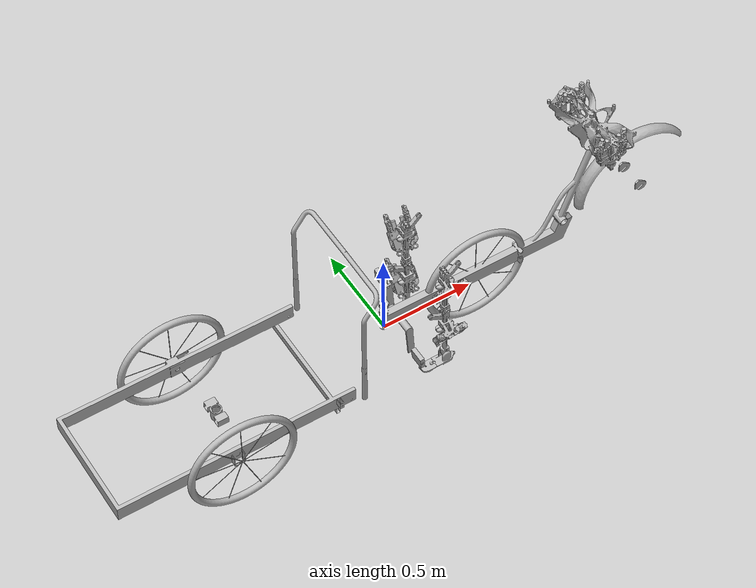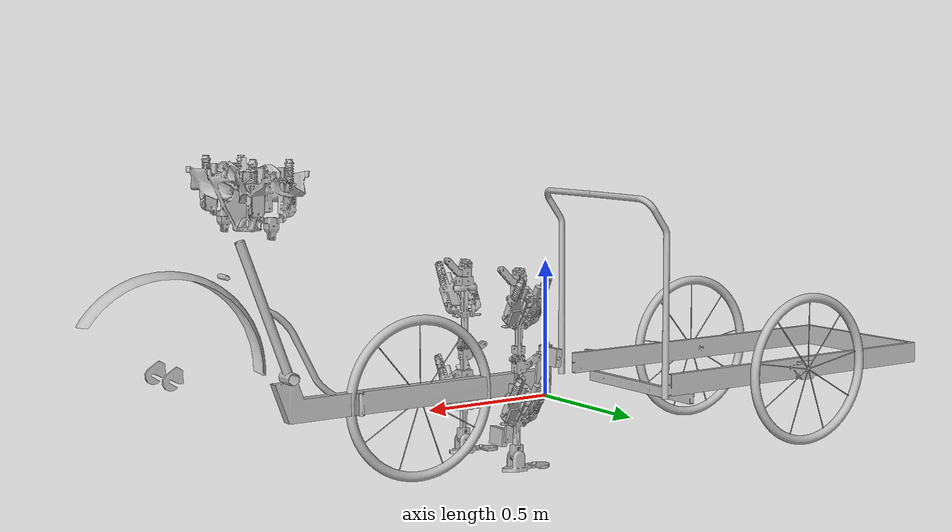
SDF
<sdf version="1.6">
	<model name="rikshaw">
		<link name="bike">
			<self_collide>false</self_collide>
			<pose frame="">-1.3108998963673458e-07 2.442664557200658e-07 1.774980865576481e-07 0.0 -0.0 0.0</pose>
			<inertial>
				<pose frame="">0.0 0.0 0.0 0 0 0</pose>
				<mass>21.819480362884757</mass>
				<inertia>
					<ixx>5.88647979750313</ixx>
					<ixy>0.052466044382052206</ixy>
					<ixz>0.14605356512826828</ixz>
					<iyy>9.145452768014158</iyy>
					<iyz>-2.309312656009525</iyz>
					<izz>3.8627003582898043</izz>
				</inertia>
			</inertial>
			<collision name="bike_collision">
				<geometry>
					<mesh>
						<uri>model://rikshaw/meshes/collisions/bike.stl</uri>
						<scale>0.001 0.001 0.001</scale>
					</mesh>
				</geometry>
			</collision>
			<visual name="bike_visual">
				<geometry>
					<mesh>
						<uri>model://rikshaw/meshes/visuals/bike.stl</uri>
						<scale>0.001 0.001 0.001</scale>
					</mesh>
				</geometry>
			</visual>
		</link>
		<link name="front_part">
			<self_collide>false</self_collide>
			<pose frame="">-0.716390260045379 0.010388552481776845 0.21643769422809594 0.0 -0.0 0.0</pose>
			<inertial>
				<pose frame="">0.0 0.0 0.0 0 0 0</pose>
				<mass>16.81067246564987</mass>
				<inertia>
					<ixx>3.20922967583295</ixx>
					<ixy>0.1811361599346656</ixy>
					<ixz>-0.006723082654580219</ixz>
					<iyy>14.662960288859963</iyy>
					<iyz>1.2419706811357931</iyz>
					<izz>13.912919701383359</izz>
				</inertia>
			</inertial>
			<collision name="front_part_collision">
				<geometry>
					<mesh>
						<uri>model://rikshaw/meshes/collisions/front_part.stl</uri>
						<scale>0.001 0.001 0.001</scale>
					</mesh>
				</geometry>
			</collision>
			<visual name="front_part_visual">
				<geometry>
					<mesh>
						<uri>model://rikshaw/meshes/visuals/front_part.stl</uri>
						<scale>0.001 0.001 0.001</scale>
					</mesh>
				</geometry>
			</visual>
		</link>
		<link name="left_wheel">
			<self_collide>false</self_collide>
			<pose frame="">-0.9984258521253281 -0.3500004088111488 0.04566700000000946 0.0 -0.0 0.0</pose>
			<inertial>
				<pose frame="">0.0 0.0 0.0 0 0 0</pose>
				<mass>13.340163929097853</mass>
				<inertia>
					<ixx>2.1711695314274517</ixx>
					<ixy>-4.661713033463329</ixy>
					<ixz>0.21322209220250807</ixz>
					<iyy>14.342326161889547</iyy>
					<iyz>0.608246286975286</iyz>
					<izz>15.441547158388715</izz>
				</inertia>
			</inertial>
			<collision name="left_wheel_collision">
				<geometry>
					<mesh>
						<uri>model://rikshaw/meshes/collisions/left_wheel.stl</uri>
						<scale>0.001 0.001 0.001</scale>
					</mesh>
				</geometry>
			</collision>
			<visual name="left_wheel_visual">
				<geometry>
					<mesh>
						<uri>model://rikshaw/meshes/visuals/left_wheel.stl</uri>
						<scale>0.001 0.001 0.001</scale>
					</mesh>
				</geometry>
			</visual>
		</link>
		<link name="right_wheel">
			<self_collide>false</self_collide>
			<pose frame="">-0.9984258521253281 0.34200026941711825 0.04566700000003973 0.0 -0.0 0.0</pose>
			<inertial>
				<pose frame="">0.0 0.0 0.0 0 0 0</pose>
				<mass>13.340163929097852</mass>
				<inertia>
					<ixx>2.0973170247321944</ixx>
					<ixy>4.555157860544093</ixy>
					<ixz>-0.20834836515382574</ixz>
					<iyy>14.34232616188958</iyy>
					<iyz>0.608246286975689</iyz>
					<izz>15.367694651693421</izz>
				</inertia>
			</inertial>
			<collision name="right_wheel_collision">
				<geometry>
					<mesh>
						<uri>model://rikshaw/meshes/collisions/right_wheel.stl</uri>
						<scale>0.001 0.001 0.001</scale>
					</mesh>
				</geometry>
			</collision>
			<visual name="right_wheel_visual">
				<geometry>
					<mesh>
						<uri>model://rikshaw/meshes/visuals/right_wheel.stl</uri>
						<scale>0.001 0.001 0.001</scale>
					</mesh>
				</geometry>
			</visual>
		</link>
		<link name="pedal_right">
			<self_collide>false</self_collide>
			<pose frame="">0.077866512064399 0.14798929042854536 0.17187503593715686 0.0 -0.0 0.0</pose>
			<inertial>
				<pose frame="">0.0 0.0 0.0 0 0 0</pose>
				<mass>0.946002588602011</mass>
				<inertia>
					<ixx>0.049584952858415854</ixx>
					<ixy>-0.010901175565176115</ixy>
					<ixz>-0.024062204564554247</ixz>
					<iyy>0.03409659621083961</iyy>
					<iyz>-0.012633073677194028</iyz>
					<izz>0.02706062629596726</izz>
				</inertia>
			</inertial>
			<collision name="pedal_right_collision">
				<geometry>
					<mesh>
						<uri>model://rikshaw/meshes/collisions/pedal_right.stl</uri>
						<scale>0.001 0.001 0.001</scale>
					</mesh>
				</geometry>
			</collision>
			<visual name="pedal_right_visual">
				<geometry>
					<mesh>
						<uri>model://rikshaw/meshes/visuals/pedal_right.stl</uri>
						<scale>0.001 0.001 0.001</scale>
					</mesh>
				</geometry>
			</visual>
		</link>
		<link name="kurbel">
			<self_collide>false</self_collide>
			<pose frame="">0.09222872619138603 0.00013171801209023543 0.0042772834965418725 0.0 -0.0 0.0</pose>
			<inertial>
				<pose frame="">0.0 0.0 0.0 0 0 0</pose>
				<mass>2.7832708381108002</mass>
				<inertia>
					<ixx>0.03321525556564324</ixx>
					<ixy>0.0010218101556732108</ixy>
					<ixz>-0.012937192477662387</ixz>
					<iyy>0.04158688185273832</iyy>
					<iyz>0.00030143634944108515</iyz>
					<izz>0.039731070916127355</izz>
				</inertia>
			</inertial>
			<collision name="kurbel_collision">
				<geometry>
					<mesh>
						<uri>model://rikshaw/meshes/collisions/kurbel.stl</uri>
						<scale>0.001 0.001 0.001</scale>
					</mesh>
				</geometry>
			</collision>
			<visual name="kurbel_visual">
				<geometry>
					<mesh>
						<uri>model://rikshaw/meshes/visuals/kurbel.stl</uri>
						<scale>0.001 0.001 0.001</scale>
					</mesh>
				</geometry>
			</visual>
		</link>
		<link name="pedal_left">
			<self_collide>false</self_collide>
			<pose frame="">0.10738103245690385 -0.14924470957145594 -0.16537796258198015 0.0 -0.0 0.0</pose>
			<inertial>
				<pose frame="">0.0 0.0 0.0 0 0 0</pose>
				<mass>0.9460025886020074</mass>
				<inertia>
					<ixx>0.0478650709459344</ixx>
					<ixy>0.015160685733445756</ixy>
					<ixz>-0.02334903344265402</ixz>
					<iyy>0.037196017563940593</iyy>
					<iyz>0.016827373941817436</iyz>
					<izz>0.032585937449107163</izz>
				</inertia>
			</inertial>
			<collision name="pedal_left_collision">
				<geometry>
					<mesh>
						<uri>model://rikshaw/meshes/collisions/pedal_left.stl</uri>
						<scale>0.001 0.001 0.001</scale>
					</mesh>
				</geometry>
			</collision>
			<visual name="pedal_left_visual">
				<geometry>
					<mesh>
						<uri>model://rikshaw/meshes/visuals/pedal_left.stl</uri>
						<scale>0.001 0.001 0.001</scale>
					</mesh>
				</geometry>
			</visual>
		</link>
		<link name="foot_left">
			<self_collide>false</self_collide>
			<pose frame="">0.1758335832021747 -0.18852199978740128 -0.20648446058656983 0.0 -0.0 0.0</pose>
			<inertial>
				<pose frame="">0.0 0.0 0.0 0 0 0</pose>
				<mass>0.7293868680453512</mass>
				<inertia>
					<ixx>0.05407030165176465</ixx>
					<ixy>0.032515128675582344</ixy>
					<ixz>-0.02676028535957317</ixz>
					<iyy>0.06910552877147094</iyy>
					<iyz>0.033571986359585956</iyz>
					<izz>0.06736891274795608</izz>
				</inertia>
			</inertial>
			<collision name="foot_left_collision">
				<geometry>
					<mesh>
						<uri>model://rikshaw/meshes/collisions/foot_left.stl</uri>
						<scale>0.001 0.001 0.001</scale>
					</mesh>
				</geometry>
			</collision>
			<visual name="foot_left_visual">
				<geometry>
					<mesh>
						<uri>model://rikshaw/meshes/visuals/foot_left.stl</uri>
						<scale>0.001 0.001 0.001</scale>
					</mesh>
				</geometry>
			</visual>
		</link>
		<link name="foot_left_tip">
			<self_collide>false</self_collide>
			<pose frame="">0.13523740897369785 -0.1873561275007122 -0.2121568313241679 0.0 -0.0 0.0</pose>
			<inertial>
				<pose frame="">0.0 0.0 0.0 0 0 0</pose>
				<mass>0.27793994464342403</mass>
				<inertia>
					<ixx>0.022350829516196824</ixx>
					<ixy>0.007050691747742392</ixy>
					<ixz>-0.011047147308991735</ixz>
					<iyy>0.017708282428285958</iyy>
					<iyz>0.007965007798907258</iyz>
					<izz>0.01503154610940157</izz>
				</inertia>
			</inertial>
			<collision name="foot_left_tip_collision">
				<geometry>
					<mesh>
						<uri>model://rikshaw/meshes/collisions/foot_left_tip.stl</uri>
						<scale>0.001 0.001 0.001</scale>
					</mesh>
				</geometry>
			</collision>
			<visual name="foot_left_tip_visual">
				<geometry>
					<mesh>
						<uri>model://rikshaw/meshes/visuals/foot_left_tip.stl</uri>
						<scale>0.001 0.001 0.001</scale>
					</mesh>
				</geometry>
			</visual>
		</link>
		<link name="foot_right">
			<self_collide>false</self_collide>
			<pose frame="">0.17755692904068937 0.15962800036486463 -0.2048798081230718 0.0 -0.0 0.0</pose>
			<inertial>
				<pose frame="">0.0 0.0 0.0 0 0 0</pose>
				<mass>0.729389451072159</mass>
				<inertia>
					<ixx>0.04662855348933404</ixx>
					<ixy>-0.027737149337326197</ixy>
					<ixz>0.02258943857652172</ixz>
					<iyy>0.06999771150432102</iyy>
					<iyz>0.03393989295119285</iyz>
					<izz>0.06080287947049831</izz>
				</inertia>
			</inertial>
			<collision name="foot_right_collision">
				<geometry>
					<mesh>
						<uri>model://rikshaw/meshes/collisions/foot_right.stl</uri>
						<scale>0.001 0.001 0.001</scale>
					</mesh>
				</geometry>
			</collision>
			<visual name="foot_right_visual">
				<geometry>
					<mesh>
						<uri>model://rikshaw/meshes/visuals/foot_right.stl</uri>
						<scale>0.001 0.001 0.001</scale>
					</mesh>
				</geometry>
			</visual>
		</link>
		<link name="foot_right_tip">
			<self_collide>false</self_collide>
			<pose frame="">0.13747575892772618 0.1579606226770175 -0.21111014954892007 0.0 -0.0 0.0</pose>
			<inertial>
				<pose frame="">0.0 0.0 0.0 0 0 0</pose>
				<mass>0.27795073699830286</mass>
				<inertia>
					<ixx>0.01940696467770468</ixx>
					<ixy>-0.006044281421455188</ixy>
					<ixz>0.009268276355937553</ixz>
					<iyy>0.017755497432934832</iyy>
					<iyz>0.008058438802785882</iyz>
					<izz>0.012380586280311603</izz>
				</inertia>
			</inertial>
			<collision name="foot_right_tip_collision">
				<geometry>
					<mesh>
						<uri>model://rikshaw/meshes/collisions/foot_right_tip.stl</uri>
						<scale>0.001 0.001 0.001</scale>
					</mesh>
				</geometry>
			</collision>
			<visual name="foot_right_tip_visual">
				<geometry>
					<mesh>
						<uri>model://rikshaw/meshes/visuals/foot_right_tip.stl</uri>
						<scale>0.001 0.001 0.001</scale>
					</mesh>
				</geometry>
			</visual>
		</link>
		<link name="thigh_right">
			<self_collide>false</self_collide>
			<pose frame="">0.2288096962986095 0.1838357520950985 0.3778973413662584 0.0 -0.0 0.0</pose>
			<inertial>
				<pose frame="">0.0 0.0 0.0 0 0 0</pose>
				<mass>5.563526842051083</mass>
				<inertia>
					<ixx>1.010776410503541</ixx>
					<ixy>-0.2339478815586405</ixy>
					<ixz>-0.38955605191739445</ixz>
					<iyy>1.1169308947780017</iyy>
					<iyz>-0.4818325949799062</iyz>
					<izz>0.4914242462128824</izz>
				</inertia>
			</inertial>
			<collision name="thigh_right_collision">
				<geometry>
					<mesh>
						<uri>model://rikshaw/meshes/collisions/thigh_right.stl</uri>
						<scale>0.001 0.001 0.001</scale>
					</mesh>
				</geometry>
			</collision>
			<visual name="thigh_right_visual">
				<geometry>
					<mesh>
						<uri>model://rikshaw/meshes/visuals/thigh_right.stl</uri>
						<scale>0.001 0.001 0.001</scale>
					</mesh>
				</geometry>
			</visual>
		</link>
		<link name="thigh_left">
			<self_collide>false</self_collide>
			<pose frame="">0.2292806537828578 -0.21262774954037852 0.3779068936299882 0.0 -0.0 0.0</pose>
			<inertial>
				<pose frame="">0.0 0.0 0.0 0 0 0</pose>
				<mass>5.56358907681273</mass>
				<inertia>
					<ixx>1.074346946173753</ixx>
					<ixy>0.27061154427198303</ixy>
					<ixz>0.4500933632421805</ixz>
					<iyy>1.11818441834799</iyy>
					<iyz>-0.48310679386128286</iyz>
					<izz>0.5561292960445591</izz>
				</inertia>
			</inertial>
			<collision name="thigh_left_collision">
				<geometry>
					<mesh>
						<uri>model://rikshaw/meshes/collisions/thigh_left.stl</uri>
						<scale>0.001 0.001 0.001</scale>
					</mesh>
				</geometry>
			</collision>
			<visual name="thigh_left_visual">
				<geometry>
					<mesh>
						<uri>model://rikshaw/meshes/visuals/thigh_left.stl</uri>
						<scale>0.001 0.001 0.001</scale>
					</mesh>
				</geometry>
			</visual>
		</link>
		<link name="leg_right">
			<self_collide>false</self_collide>
			<pose frame="">0.23291230339322222 0.18326545464147473 0.02997274571608183 0.0 -0.0 0.0</pose>
			<inertial>
				<pose frame="">0.0 0.0 0.0 0 0 0</pose>
				<mass>5.741522183296095</mass>
				<inertia>
					<ixx>0.23781953162702005</ixx>
					<ixy>-0.24551774912550647</ixy>
					<ixz>-0.0349695895920111</ixz>
					<iyy>0.35939915474470285</iyy>
					<iyz>-0.03759074396148515</iyz>
					<izz>0.5167551686248066</izz>
				</inertia>
			</inertial>
			<collision name="leg_right_collision">
				<geometry>
					<mesh>
						<uri>model://rikshaw/meshes/collisions/leg_right.stl</uri>
						<scale>0.001 0.001 0.001</scale>
					</mesh>
				</geometry>
			</collision>
			<visual name="leg_right_visual">
				<geometry>
					<mesh>
						<uri>model://rikshaw/meshes/visuals/leg_right.stl</uri>
						<scale>0.001 0.001 0.001</scale>
					</mesh>
				</geometry>
			</visual>
		</link>
		<link name="leg_left">
			<self_collide>false</self_collide>
			<pose frame="">0.23204399957549993 -0.21169134883590915 0.03008519121128405 0.0 -0.0 0.0</pose>
			<inertial>
				<pose frame="">0.0 0.0 0.0 0 0 0</pose>
				<mass>5.742617323881256</mass>
				<inertia>
					<ixx>0.30243679771490606</ixx>
					<ixy>0.2819991342227071</ixy>
					<ixz>0.04001187315119927</ixz>
					<iyy>0.3572028058613215</iyy>
					<iyz>-0.03813053072294939</iyz>
					<izz>0.5789432870277177</izz>
				</inertia>
			</inertial>
			<collision name="leg_left_collision">
				<geometry>
					<mesh>
						<uri>model://rikshaw/meshes/collisions/leg_left.stl</uri>
						<scale>0.001 0.001 0.001</scale>
					</mesh>
				</geometry>
			</collision>
			<visual name="leg_left_visual">
				<geometry>
					<mesh>
						<uri>model://rikshaw/meshes/visuals/leg_left.stl</uri>
						<scale>0.001 0.001 0.001</scale>
					</mesh>
				</geometry>
			</visual>
		</link>
		<link name="wheel_back">
			<self_collide>false</self_collide>
			<pose frame="">0.53689742860369 0.0035499556212922633 0.049415870249024677 0.0 -0.0 0.0</pose>
			<inertial>
				<pose frame="">0.0 0.0 0.0 0 0 0</pose>
				<mass>13.340163929098475</mass>
				<inertia>
					<ixx>0.5419188938328752</ixx>
					<ixy>-0.02542584611932503</ixy>
					<ixz>-0.0023401868697195947</ixz>
					<iyy>4.894303401629515</iyy>
					<iyz>-0.3539312731878215</iyz>
					<izz>4.3547634684642125</izz>
				</inertia>
			</inertial>
			<collision name="wheel_back_collision">
				<geometry>
					<mesh>
						<uri>model://rikshaw/meshes/collisions/wheel_back.stl</uri>
						<scale>0.001 0.001 0.001</scale>
					</mesh>
				</geometry>
			</collision>
			<visual name="wheel_back_visual">
				<geometry>
					<mesh>
						<uri>model://rikshaw/meshes/visuals/wheel_back.stl</uri>
						<scale>0.001 0.001 0.001</scale>
					</mesh>
				</geometry>
			</visual>
		</link>
		<joint name="joint_hip_left" type="revolute">
			<parent>bike</parent>
			<child>thigh_left</child>
			<pose frame="">-0.004772293722202186 0.010555749497587285 0.11112120503857874 0 0 0</pose>
			<axis>
				<xyz>4.713567773490396e-12 -0.9999999999999998 -4.747094653015647e-10</xyz>
				<limit>
					<lower>-3.141592653589793</lower>
					<upper>3.141592653589793</upper>
				</limit>
				<use_parent_model_frame>0</use_parent_model_frame>
			</axis>
		</joint>
		<joint name="joint_pedal_right" type="revolute">
			<parent>kurbel</parent>
			<child>pedal_right</child>
			<pose frame="">-4.220983134520573e-05 0.042000000000000405 -6.592456775077693e-05 0 0 0</pose>
			<axis>
				<xyz>-5.847985275656098e-16 1.0000000000000007 -1.5799660158833414e-15</xyz>
				<limit>
					<lower>-3.141592653589793</lower>
					<upper>3.141592653589793</upper>
				</limit>
				<use_parent_model_frame>0</use_parent_model_frame>
			</axis>
		</joint>
		<joint name="joint_pedal_left" type="revolute">
			<parent>kurbel</parent>
			<child>pedal_left</child>
			<pose frame="">-5.301625021756351e-05 -0.04199999999999946 5.759336515112068e-05 0 0 0</pose>
			<axis>
				<xyz>5.847985275656082e-16 -1.0 1.5799660158833548e-15</xyz>
				<limit>
					<lower>-3.141592653589793</lower>
					<upper>3.141592653589793</upper>
				</limit>
				<use_parent_model_frame>0</use_parent_model_frame>
			</axis>
		</joint>
		<joint name="joint_wheel_right" type="revolute">
			<parent>front_part</parent>
			<child>right_wheel</child>
			<pose frame="">5.684341886080802e-16 -0.003999653375198307 5.577760475716787e-15 0 0 0</pose>
			<axis>
				<xyz>-3.1662288285727846e-30 0.9999999999999998 4.317059530368991e-14</xyz>
				<limit>
					<lower>-3.141592653589793</lower>
					<upper>3.141592653589793</upper>
				</limit>
				<use_parent_model_frame>0</use_parent_model_frame>
			</axis>
		</joint>
		<joint name="joint_wheel_back" type="revolute">
			<parent>bike</parent>
			<child>wheel_back</child>
			<pose frame="">-1.4210854715202004e-16 -0.0689996533751975 2.1316282072803005e-16 0 0 0</pose>
			<axis>
				<xyz>6.938893903907228e-17 -1.0 1.27675647831893e-15</xyz>
				<limit>
					<lower>-3.141592653589793</lower>
					<upper>3.141592653589793</upper>
				</limit>
				<use_parent_model_frame>0</use_parent_model_frame>
			</axis>
		</joint>
		<joint name="joint_pedal" type="revolute">
			<parent>bike</parent>
			<child>kurbel</child>
			<pose frame="">0.0002782913867391912 -0.035131649555820536 -0.0010093313481022886 0 0 0</pose>
			<axis>
				<xyz>-6.938893903907228e-17 1.0 -1.27675647831893e-15</xyz>
				<limit>
					<lower>-3.141592653589793</lower>
					<upper>3.141592653589793</upper>
				</limit>
				<use_parent_model_frame>0</use_parent_model_frame>
			</axis>
		</joint>
		<joint name="spine_joint" type="revolute">
			<parent>bike</parent>
			<child>torso</child>
			<pose frame="">0.020608468146441475 0.002662439688556928 -0.4438862707348987 0 0 0</pose>
			<axis>
				<xyz>0.01953591123167811 4.747112516936242e-10 -0.9998091558754337</xyz>
				<limit>
					<lower>-0.5235987755982988</lower>
					<upper>0.5235987755982988</upper>
				</limit>
				<use_parent_model_frame>0</use_parent_model_frame>
			</axis>
		</joint>
		<joint name="joint_wheel_left" type="revolute">
			<parent>front_part</parent>
			<child>left_wheel</child>
			<pose frame="">5.684341886080802e-16 0.04600034662480173 7.638334409421077e-15 0 0 0</pose>
			<axis>
				<xyz>3.1662288285727846e-30 -0.9999999999999998 -4.317059530368991e-14</xyz>
				<limit>
					<lower>-3.141592653589793</lower>
					<upper>3.141592653589793</upper>
				</limit>
				<use_parent_model_frame>0</use_parent_model_frame>
			</axis>
		</joint>
		<joint name="joint_front" type="revolute">
			<parent>bike</parent>
			<child>front_part</child>
			<pose frame="">-0.23003546880974085 -0.010388308215364166 -0.2052706960113988 0 0 0</pose>
			<axis>
				<xyz>5.345642609144017e-16 -4.084397910750052e-14 1.0</xyz>
				<limit>
					<lower>-0.5235987755982988</lower>
					<upper>0.5235987755982988</upper>
				</limit>
				<use_parent_model_frame>0</use_parent_model_frame>
			</axis>
		</joint>
		<joint name="joint_knee_left" type="revolute">
			<parent>thigh_left</parent>
			<child>leg_left</child>
			<pose frame="">0.008998953193511135 0.03366934893478955 0.1502070053691074 0 0 0</pose>
			<axis>
				<xyz>7.650706696754678e-13 -1.0000000000000242 -2.724202984566474e-10</xyz>
				<limit>
					<lower>-3.141592653589793</lower>
					<upper>3.141592653589793</upper>
				</limit>
				<use_parent_model_frame>0</use_parent_model_frame>
			</axis>
		</joint>
		<joint name="joint_hip_right" type="revolute">
			<parent>bike</parent>
			<child>thigh_right</child>
			<pose frame="">-0.0043013362396470715 -0.021907752148369503 0.11113075747510301 0 0 0</pose>
			<axis>
				<xyz>4.713397833840635e-12 -0.9999999999999999 -4.747100165437955e-10</xyz>
				<limit>
					<lower>-3.141592653589793</lower>
					<upper>3.141592653589793</upper>
				</limit>
				<use_parent_model_frame>0</use_parent_model_frame>
			</axis>
		</joint>
		<joint name="joint_knee_right" type="revolute">
			<parent>thigh_right</parent>
			<child>leg_right</child>
			<pose frame="">0.007630744880886909 -0.013637454540967155 0.15030968324725197 0 0 0</pose>
			<axis>
				<xyz>-5.578294770547387e-12 1.0000000000000238 5.18998843901386e-10</xyz>
				<limit>
					<lower>-3.141592653589793</lower>
					<upper>3.141592653589793</upper>
				</limit>
				<use_parent_model_frame>0</use_parent_model_frame>
			</axis>
		</joint>
		<joint name="joint_foot_left" type="revolute">
			<parent>leg_left</parent>
			<child>foot_left</child>
			<pose frame="">0.062029311023970135 0.02399999998477682 0.037647902654059 0 0 0</pose>
			<axis>
				<xyz>2.3717178592197033e-12 1.0000000000000004 1.1192845873769567e-10</xyz>
				<limit>
					<lower>-3.141592653589793</lower>
					<upper>3.141592653589793</upper>
				</limit>
				<use_parent_model_frame>0</use_parent_model_frame>
			</axis>
		</joint>
		<joint name="joint_foot_left_tip" type="fixed">
			<parent>foot_left</parent>
			<child>foot_left_tip</child>
			<pose frame="">0.04104082618663035 -0.0011658722973624692 0.005885933969600999 0 0 0</pose>
		</joint>
		<joint name="joint_foot_right" type="revolute">
			<parent>leg_right</parent>
			<child>foot_right</child>
			<pose frame="">0.06298913883515056 0.02349999997007709 0.0360190000292614 0 0 0</pose>
			<axis>
				<xyz>-1.1248040916633449e-11 0.9999999999999997 7.168121649584346e-10</xyz>
				<limit>
					<lower>-3.141592653589793</lower>
					<upper>3.141592653589793</upper>
				</limit>
				<use_parent_model_frame>0</use_parent_model_frame>
			</axis>
		</joint>
		<joint name="joint_foot_right_tip" type="fixed">
			<parent>foot_right</parent>
			<child>foot_right_tip</child>
			<pose frame="">0.0410989272113666 0.001167377683599078 0.005458746911520578 0 0 0</pose>
		</joint>
		<plugin filename="libcardsflow_gazebo_plugin.so" name="cardsflow_gazebo_plugin" />
	</model>
</sdf>
